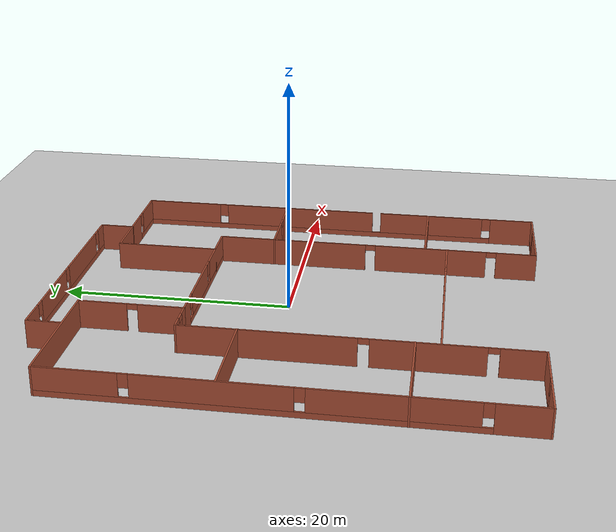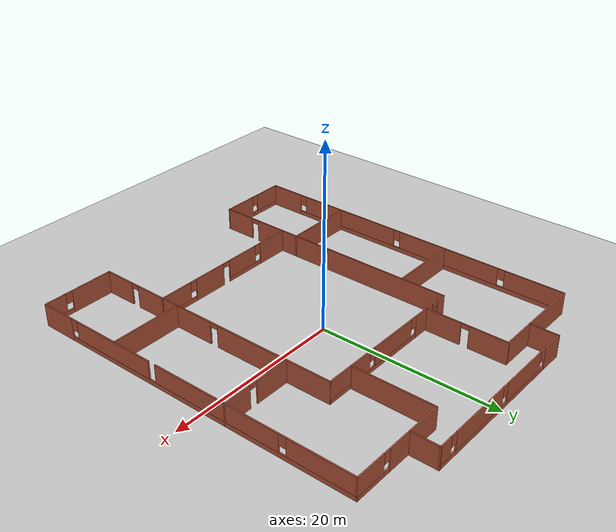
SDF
<sdf version="1.6">
 <world name="default">
  <model name="ground_plane">
   <static>1</static>
   <link name="link">
    <collision name="collision">
     <geometry><plane><normal>0 0 1</normal><size>100 100</size></plane></geometry>
     <surface>
      <contact><collide_bitmask>65535</collide_bitmask></contact>
      <friction><ode><mu>100</mu><mu2>50</mu2></ode></friction>
     </surface>
    </collision>
    <visual name="visual">
     <cast_shadows>0</cast_shadows>
     <geometry><plane><normal>0 0 1</normal><size>100 100</size></plane></geometry>
     <material>
      <script><uri>file://media/materials/scripts/gazebo.material</uri><name>Gazebo/Grey</name></script>
     </material>
    </visual>
   </link>
  </model>
  <model name="structure">
   <pose>-0.2787 -0.7695 0 0 -0 0</pose>
   <link name="Wall_11">
    <collision name="Wall_11_Collision">
     <geometry><box><size>11.15 0.15 2.5</size></box></geometry>
     <pose>0 0 1.25 0 -0 0</pose>
    </collision>
    <visual name="Wall_11_Visual">
     <pose>0 0 1.25 0 -0 0</pose>
     <geometry><box><size>11.15 0.15 2.5</size></box></geometry>
     <material>
      <script><uri>file://media/materials/scripts/gazebo.material</uri><name>Gazebo/Bricks</name></script>
      <ambient>1 1 1 1</ambient>
     </material>
     <meta><layer>0</layer></meta>
    </visual>
    <pose>-11.5 17.5 0 0 -0 0</pose>
   </link>
   <link name="Wall_13">
    <pose>-6 13 0 0 0 -1.5708</pose>
    <visual name="Wall_13_Visual_0">
     <pose>-2.45369 0 1.25 0 -0 0</pose>
     <geometry><box><size>4.24262 0.15 2.5</size></box></geometry>
     <material>
      <script><uri>file://media/materials/scripts/gazebo.material</uri><name>Gazebo/Bricks</name></script>
      <ambient>1 1 1 1</ambient>
     </material>
     <meta><layer>0</layer></meta>
    </visual>
    <collision name="Wall_13_Collision_0">
     <geometry><box><size>4.24262 0.15 2.5</size></box></geometry>
     <pose>-2.45369 0 1.25 0 -0 0</pose>
    </collision>
    <visual name="Wall_13_Visual_1">
     <pose>2.57131 0 1.25 0 -0 0</pose>
     <geometry><box><size>4.00738 0.15 2.5</size></box></geometry>
     <material>
      <script><uri>file://media/materials/scripts/gazebo.material</uri><name>Gazebo/Bricks</name></script>
      <ambient>1 1 1 1</ambient>
     </material>
     <meta><layer>0</layer></meta>
    </visual>
    <collision name="Wall_13_Collision_1">
     <geometry><box><size>4.00738 0.15 2.5</size></box></geometry>
     <pose>2.57131 0 1.25 0 -0 0</pose>
    </collision>
    <visual name="Wall_13_Visual_2">
     <pose>0.117622 0 2.25 0 -0 0</pose>
     <geometry><box><size>0.9 0.15 0.5</size></box></geometry>
     <material>
      <script><uri>file://media/materials/scripts/gazebo.material</uri><name>Gazebo/Bricks</name></script>
      <ambient>1 1 1 1</ambient>
     </material>
     <meta><layer>0</layer></meta>
    </visual>
    <collision name="Wall_13_Collision_2">
     <geometry><box><size>0.9 0.15 0.5</size></box></geometry>
     <pose>0.117622 0 2.25 0 -0 0</pose>
    </collision>
   </link>
   <link name="Wall_15">
    <pose>-7.5 8.5 0 0 -0 3.14159</pose>
    <visual name="Wall_15_Visual_0">
     <pose>-1.03841 0 1.25 0 -0 0</pose>
     <geometry><box><size>1.07318 0.15 2.5</size></box></geometry>
     <material>
      <script><uri>file://media/materials/scripts/gazebo.material</uri><name>Gazebo/Bricks</name></script>
      <ambient>1 1 1 1</ambient>
     </material>
     <meta><layer>0</layer></meta>
    </visual>
    <collision name="Wall_15_Collision_0">
     <geometry><box><size>1.07318 0.15 2.5</size></box></geometry>
     <pose>-1.03841 0 1.25 0 -0 0</pose>
    </collision>
    <visual name="Wall_15_Visual_1">
     <pose>0.98659 0 1.25 0 -0 0</pose>
     <geometry><box><size>1.17682 0.15 2.5</size></box></geometry>
     <material>
      <script><uri>file://media/materials/scripts/gazebo.material</uri><name>Gazebo/Bricks</name></script>
      <ambient>1 1 1 1</ambient>
     </material>
     <meta><layer>0</layer></meta>
    </visual>
    <collision name="Wall_15_Collision_1">
     <geometry><box><size>1.17682 0.15 2.5</size></box></geometry>
     <pose>0.98659 0 1.25 0 -0 0</pose>
    </collision>
    <visual name="Wall_15_Visual_2">
     <pose>-0.051821 0 2.25 0 -0 0</pose>
     <geometry><box><size>0.9 0.15 0.5</size></box></geometry>
     <material>
      <script><uri>file://media/materials/scripts/gazebo.material</uri><name>Gazebo/Bricks</name></script>
      <ambient>1 1 1 1</ambient>
     </material>
     <meta><layer>0</layer></meta>
    </visual>
    <collision name="Wall_15_Collision_2">
     <geometry><box><size>0.9 0.15 0.5</size></box></geometry>
     <pose>-0.051821 0 2.25 0 -0 0</pose>
    </collision>
   </link>
   <link name="Wall_19">
    <pose>-9 -6 0 0 0 -1.5708</pose>
    <visual name="Wall_19_Visual_0">
     <pose>-7.2625 0 1.25 0 -0 0</pose>
     <geometry><box><size>14.625 0.15 2.5</size></box></geometry>
     <material>
      <script><uri>file://media/materials/scripts/gazebo.material</uri><name>Gazebo/Bricks</name></script>
      <ambient>1 1 1 1</ambient>
     </material>
     <meta><layer>0</layer></meta>
    </visual>
    <collision name="Wall_19_Collision_0">
     <geometry><box><size>14.625 0.15 2.5</size></box></geometry>
     <pose>-7.2625 0 1.25 0 -0 0</pose>
    </collision>
    <visual name="Wall_19_Visual_1">
     <pose>5.5 0 1.25 0 -0 0</pose>
     <geometry><box><size>9.1 0.15 2.5</size></box></geometry>
     <material>
      <script><uri>file://media/materials/scripts/gazebo.material</uri><name>Gazebo/Bricks</name></script>
      <ambient>1 1 1 1</ambient>
     </material>
     <meta><layer>0</layer></meta>
    </visual>
    <collision name="Wall_19_Collision_1">
     <geometry><box><size>9.1 0.15 2.5</size></box></geometry>
     <pose>5.5 0 1.25 0 -0 0</pose>
    </collision>
    <visual name="Wall_19_Visual_2">
     <pose>12.7625 0 1.25 0 -0 0</pose>
     <geometry><box><size>3.625 0.15 2.5</size></box></geometry>
     <material>
      <script><uri>file://media/materials/scripts/gazebo.material</uri><name>Gazebo/Bricks</name></script>
      <ambient>1 1 1 1</ambient>
     </material>
     <meta><layer>0</layer></meta>
    </visual>
    <collision name="Wall_19_Collision_2">
     <geometry><box><size>3.625 0.15 2.5</size></box></geometry>
     <pose>12.7625 0 1.25 0 -0 0</pose>
    </collision>
    <visual name="Wall_19_Visual_3">
     <pose>0.5 0 2.25 0 -0 0</pose>
     <geometry><box><size>0.9 0.15 0.5</size></box></geometry>
     <material>
      <script><uri>file://media/materials/scripts/gazebo.material</uri><name>Gazebo/Bricks</name></script>
      <ambient>1 1 1 1</ambient>
     </material>
     <meta><layer>0</layer></meta>
    </visual>
    <collision name="Wall_19_Collision_3">
     <geometry><box><size>0.9 0.15 0.5</size></box></geometry>
     <pose>0.5 0 2.25 0 -0 0</pose>
    </collision>
    <visual name="Wall_19_Visual_4">
     <pose>10.5 0 2.25 0 -0 0</pose>
     <geometry><box><size>0.9 0.15 0.5</size></box></geometry>
     <material>
      <script><uri>file://media/materials/scripts/gazebo.material</uri><name>Gazebo/Bricks</name></script>
      <ambient>1 1 1 1</ambient>
     </material>
     <meta><layer>0</layer></meta>
    </visual>
    <collision name="Wall_19_Collision_4">
     <geometry><box><size>0.9 0.15 0.5</size></box></geometry>
     <pose>10.5 0 2.25 0 -0 0</pose>
    </collision>
   </link>
   <link name="Wall_21">
    <pose>-13 -20.5 0 0 -0 3.14159</pose>
    <visual name="Wall_21_Visual_0">
     <pose>-2.10298 0 1.25 0 -0 0</pose>
     <geometry><box><size>3.94403 0.15 2.5</size></box></geometry>
     <material>
      <script><uri>file://media/materials/scripts/gazebo.material</uri><name>Gazebo/Bricks</name></script>
      <ambient>1 1 1 1</ambient>
     </material>
     <meta><layer>0</layer></meta>
    </visual>
    <collision name="Wall_21_Collision_0">
     <geometry><box><size>3.94403 0.15 2.5</size></box></geometry>
     <pose>-2.10298 0 1.25 0 -0 0</pose>
    </collision>
    <visual name="Wall_21_Visual_1">
     <pose>1.97202 0 0.25 0 -0 0</pose>
     <geometry><box><size>4.20597 0.15 0.5</size></box></geometry>
     <material>
      <script><uri>file://media/materials/scripts/gazebo.material</uri><name>Gazebo/Bricks</name></script>
      <ambient>1 1 1 1</ambient>
     </material>
     <meta><layer>0</layer></meta>
    </visual>
    <collision name="Wall_21_Collision_1">
     <geometry><box><size>4.20597 0.15 0.5</size></box></geometry>
     <pose>1.97202 0 0.25 0 -0 0</pose>
    </collision>
    <visual name="Wall_21_Visual_2">
     <pose>2.37202 0 1.5 0 -0 0</pose>
     <geometry><box><size>3.40597 0.15 2</size></box></geometry>
     <material>
      <script><uri>file://media/materials/scripts/gazebo.material</uri><name>Gazebo/Bricks</name></script>
      <ambient>1 1 1 1</ambient>
     </material>
     <meta><layer>0</layer></meta>
    </visual>
    <collision name="Wall_21_Collision_2">
     <geometry><box><size>3.40597 0.15 2</size></box></geometry>
     <pose>2.37202 0 1.5 0 -0 0</pose>
    </collision>
    <visual name="Wall_21_Visual_3">
     <pose>0.269032 0 1.9 0 -0 0</pose>
     <geometry><box><size>0.8 0.15 1.2</size></box></geometry>
     <material>
      <script><uri>file://media/materials/scripts/gazebo.material</uri><name>Gazebo/Bricks</name></script>
      <ambient>1 1 1 1</ambient>
     </material>
     <meta><layer>0</layer></meta>
    </visual>
    <collision name="Wall_21_Collision_3">
     <geometry><box><size>0.8 0.15 1.2</size></box></geometry>
     <pose>0.269032 0 1.9 0 -0 0</pose>
    </collision>
   </link>
   <link name="Wall_23">
    <collision name="Wall_23_Collision">
     <geometry><box><size>8.15 0.15 2.5</size></box></geometry>
     <pose>0 0 1.25 0 -0 0</pose>
    </collision>
    <visual name="Wall_23_Visual">
     <pose>0 0 1.25 0 -0 0</pose>
     <geometry><box><size>8.15 0.15 2.5</size></box></geometry>
     <material>
      <script><uri>file://media/materials/scripts/gazebo.material</uri><name>Gazebo/Bricks</name></script>
      <ambient>1 1 1 1</ambient>
     </material>
     <meta><layer>0</layer></meta>
    </visual>
    <pose>-13 3.5 0 0 -0 3.14159</pose>
   </link>
   <link name="Wall_25">
    <collision name="Wall_25_Collision">
     <geometry><box><size>8.15 0.15 2.5</size></box></geometry>
     <pose>0 0 1.25 0 -0 0</pose>
    </collision>
    <visual name="Wall_25_Visual">
     <pose>0 0 1.25 0 -0 0</pose>
     <geometry><box><size>8.15 0.15 2.5</size></box></geometry>
     <material>
      <script><uri>file://media/materials/scripts/gazebo.material</uri><name>Gazebo/Bricks</name></script>
      <ambient>0.921569 0.807843 0.615686 1</ambient>
     </material>
     <meta><layer>0</layer></meta>
    </visual>
    <pose>-13 -10.5 0 0 -0 3.14159</pose>
   </link>
   <link name="Wall_27">
    <pose>1e-06 -12.5 0 0 -0 0</pose>
    <visual name="Wall_27_Visual_0">
     <pose>-7.15272 0 1.25 0 -0 0</pose>
     <geometry><box><size>3.84455 0.15 2.5</size></box></geometry>
     <material>
      <script><uri>file://media/materials/scripts/gazebo.material</uri><name>Gazebo/Bricks</name></script>
      <ambient>0.921569 0.807843 0.615686 1</ambient>
     </material>
     <meta><layer>0</layer></meta>
    </visual>
    <collision name="Wall_27_Collision_0">
     <geometry><box><size>3.84455 0.15 2.5</size></box></geometry>
     <pose>-7.15272 0 1.25 0 -0 0</pose>
    </collision>
    <visual name="Wall_27_Visual_1">
     <pose>2.43616 0 1.25 0 -0 0</pose>
     <geometry><box><size>3.97232 0.15 2.5</size></box></geometry>
     <material>
      <script><uri>file://media/materials/scripts/gazebo.material</uri><name>Gazebo/Bricks</name></script>
      <ambient>0.921569 0.807843 0.615686 1</ambient>
     </material>
     <meta><layer>0</layer></meta>
    </visual>
    <collision name="Wall_27_Collision_1">
     <geometry><box><size>3.97232 0.15 2.5</size></box></geometry>
     <pose>2.43616 0 1.25 0 -0 0</pose>
    </collision>
    <visual name="Wall_27_Visual_2">
     <pose>-2.84022 0 0.25 0 -0 0</pose>
     <geometry><box><size>4.78045 0.15 0.5</size></box></geometry>
     <material>
      <script><uri>file://media/materials/scripts/gazebo.material</uri><name>Gazebo/Bricks</name></script>
      <ambient>0.921569 0.807843 0.615686 1</ambient>
     </material>
     <meta><layer>0</layer></meta>
    </visual>
    <collision name="Wall_27_Collision_2">
     <geometry><box><size>4.78045 0.15 0.5</size></box></geometry>
     <pose>-2.84022 0 0.25 0 -0 0</pose>
    </collision>
    <visual name="Wall_27_Visual_3">
     <pose>6.74866 0 0.25 0 -0 0</pose>
     <geometry><box><size>4.65268 0.15 0.5</size></box></geometry>
     <material>
      <script><uri>file://media/materials/scripts/gazebo.material</uri><name>Gazebo/Bricks</name></script>
      <ambient>0.921569 0.807843 0.615686 1</ambient>
     </material>
     <meta><layer>0</layer></meta>
    </visual>
    <collision name="Wall_27_Collision_3">
     <geometry><box><size>4.65268 0.15 0.5</size></box></geometry>
     <pose>6.74866 0 0.25 0 -0 0</pose>
    </collision>
    <visual name="Wall_27_Visual_4">
     <pose>-2.44022 0 1.5 0 -0 0</pose>
     <geometry><box><size>3.98045 0.15 2</size></box></geometry>
     <material>
      <script><uri>file://media/materials/scripts/gazebo.material</uri><name>Gazebo/Bricks</name></script>
      <ambient>0.921569 0.807843 0.615686 1</ambient>
     </material>
     <meta><layer>0</layer></meta>
    </visual>
    <collision name="Wall_27_Collision_4">
     <geometry><box><size>3.98045 0.15 2</size></box></geometry>
     <pose>-2.44022 0 1.5 0 -0 0</pose>
    </collision>
    <visual name="Wall_27_Visual_5">
     <pose>-2.44022 0 1.5 0 -0 0</pose>
     <geometry><box><size>3.98045 0.15 2</size></box></geometry>
     <material>
      <script><uri>file://media/materials/scripts/gazebo.material</uri><name>Gazebo/Bricks</name></script>
      <ambient>0.921569 0.807843 0.615686 1</ambient>
     </material>
     <meta><layer>0</layer></meta>
    </visual>
    <collision name="Wall_27_Collision_5">
     <geometry><box><size>3.98045 0.15 2</size></box></geometry>
     <pose>-2.44022 0 1.5 0 -0 0</pose>
    </collision>
    <visual name="Wall_27_Visual_6">
     <pose>7.14866 0 1.5 0 -0 0</pose>
     <geometry><box><size>3.85268 0.15 2</size></box></geometry>
     <material>
      <script><uri>file://media/materials/scripts/gazebo.material</uri><name>Gazebo/Bricks</name></script>
      <ambient>0.921569 0.807843 0.615686 1</ambient>
     </material>
     <meta><layer>0</layer></meta>
    </visual>
    <collision name="Wall_27_Collision_6">
     <geometry><box><size>3.85268 0.15 2</size></box></geometry>
     <pose>7.14866 0 1.5 0 -0 0</pose>
    </collision>
    <visual name="Wall_27_Visual_7">
     <pose>-4.83045 0 1.9 0 -0 0</pose>
     <geometry><box><size>0.8 0.15 1.2</size></box></geometry>
     <material>
      <script><uri>file://media/materials/scripts/gazebo.material</uri><name>Gazebo/Bricks</name></script>
      <ambient>0.921569 0.807843 0.615686 1</ambient>
     </material>
     <meta><layer>0</layer></meta>
    </visual>
    <collision name="Wall_27_Collision_7">
     <geometry><box><size>0.8 0.15 1.2</size></box></geometry>
     <pose>-4.83045 0 1.9 0 -0 0</pose>
    </collision>
    <visual name="Wall_27_Visual_8">
     <pose>4.82232 0 1.9 0 -0 0</pose>
     <geometry><box><size>0.8 0.15 1.2</size></box></geometry>
     <material>
      <script><uri>file://media/materials/scripts/gazebo.material</uri><name>Gazebo/Bricks</name></script>
      <ambient>0.921569 0.807843 0.615686 1</ambient>
     </material>
     <meta><layer>0</layer></meta>
    </visual>
    <collision name="Wall_27_Collision_8">
     <geometry><box><size>0.8 0.15 1.2</size></box></geometry>
     <pose>4.82232 0 1.9 0 -0 0</pose>
    </collision>
    <visual name="Wall_27_Visual_9">
     <pose>0 0 2.25 0 -0 0</pose>
     <geometry><box><size>0.9 0.15 0.5</size></box></geometry>
     <material>
      <script><uri>file://media/materials/scripts/gazebo.material</uri><name>Gazebo/Bricks</name></script>
      <ambient>0.921569 0.807843 0.615686 1</ambient>
     </material>
     <meta><layer>0</layer></meta>
    </visual>
    <collision name="Wall_27_Collision_9">
     <geometry><box><size>0.9 0.15 0.5</size></box></geometry>
     <pose>0 0 2.25 0 -0 0</pose>
    </collision>
    <visual name="Wall_27_Visual_10">
     <pose>0 0 2.25 0 -0 0</pose>
     <geometry><box><size>0.9 0.15 0.5</size></box></geometry>
     <material>
      <script><uri>file://media/materials/scripts/gazebo.material</uri><name>Gazebo/Bricks</name></script>
      <ambient>0.921569 0.807843 0.615686 1</ambient>
     </material>
     <meta><layer>0</layer></meta>
    </visual>
    <collision name="Wall_27_Collision_10">
     <geometry><box><size>0.9 0.15 0.5</size></box></geometry>
     <pose>0 0 2.25 0 -0 0</pose>
    </collision>
   </link>
   <link name="Wall_29">
    <pose>1.5 8.5 0 0 -0 0</pose>
    <visual name="Wall_29_Visual_0">
     <pose>-6.61866 0 1.25 0 -0 0</pose>
     <geometry><box><size>1.91268 0.15 2.5</size></box></geometry>
     <material>
      <script><uri>file://media/materials/scripts/gazebo.material</uri><name>Gazebo/Bricks</name></script>
      <ambient>1 1 1 1</ambient>
     </material>
     <meta><layer>0</layer></meta>
    </visual>
    <collision name="Wall_29_Collision_0">
     <geometry><box><size>1.91268 0.15 2.5</size></box></geometry>
     <pose>-6.61866 0 1.25 0 -0 0</pose>
    </collision>
    <visual name="Wall_29_Visual_1">
     <pose>0.956339 0 0.25 0 -0 0</pose>
     <geometry><box><size>13.2373 0.15 0.5</size></box></geometry>
     <material>
      <script><uri>file://media/materials/scripts/gazebo.material</uri><name>Gazebo/Bricks</name></script>
      <ambient>1 1 1 1</ambient>
     </material>
     <meta><layer>0</layer></meta>
    </visual>
    <collision name="Wall_29_Collision_1">
     <geometry><box><size>13.2373 0.15 0.5</size></box></geometry>
     <pose>0.956339 0 0.25 0 -0 0</pose>
    </collision>
    <visual name="Wall_29_Visual_2">
     <pose>-1.96235 0 1.5 0 -0 0</pose>
     <geometry><box><size>5.79994 0.15 2</size></box></geometry>
     <material>
      <script><uri>file://media/materials/scripts/gazebo.material</uri><name>Gazebo/Bricks</name></script>
      <ambient>1 1 1 1</ambient>
     </material>
     <meta><layer>0</layer></meta>
    </visual>
    <collision name="Wall_29_Collision_2">
     <geometry><box><size>5.79994 0.15 2</size></box></geometry>
     <pose>-1.96235 0 1.5 0 -0 0</pose>
    </collision>
    <visual name="Wall_29_Visual_3">
     <pose>4.65631 0 1.5 0 -0 0</pose>
     <geometry><box><size>5.83739 0.15 2</size></box></geometry>
     <material>
      <script><uri>file://media/materials/scripts/gazebo.material</uri><name>Gazebo/Bricks</name></script>
      <ambient>1 1 1 1</ambient>
     </material>
     <meta><layer>0</layer></meta>
    </visual>
    <collision name="Wall_29_Collision_3">
     <geometry><box><size>5.83739 0.15 2</size></box></geometry>
     <pose>4.65631 0 1.5 0 -0 0</pose>
    </collision>
    <visual name="Wall_29_Visual_4">
     <pose>-5.26232 0 1.9 0 -0 0</pose>
     <geometry><box><size>0.8 0.15 1.2</size></box></geometry>
     <material>
      <script><uri>file://media/materials/scripts/gazebo.material</uri><name>Gazebo/Bricks</name></script>
      <ambient>1 1 1 1</ambient>
     </material>
     <meta><layer>0</layer></meta>
    </visual>
    <collision name="Wall_29_Collision_4">
     <geometry><box><size>0.8 0.15 1.2</size></box></geometry>
     <pose>-5.26232 0 1.9 0 -0 0</pose>
    </collision>
    <visual name="Wall_29_Visual_5">
     <pose>1.33761 0 1.9 0 -0 0</pose>
     <geometry><box><size>0.8 0.15 1.2</size></box></geometry>
     <material>
      <script><uri>file://media/materials/scripts/gazebo.material</uri><name>Gazebo/Bricks</name></script>
      <ambient>1 1 1 1</ambient>
     </material>
     <meta><layer>0</layer></meta>
    </visual>
    <collision name="Wall_29_Collision_5">
     <geometry><box><size>0.8 0.15 1.2</size></box></geometry>
     <pose>1.33761 0 1.9 0 -0 0</pose>
    </collision>
   </link>
   <link name="Wall_31">
    <pose>9 -6 0 0 0 -1.5708</pose>
    <visual name="Wall_31_Visual_0">
     <pose>-7.7625 0 1.25 0 -0 0</pose>
     <geometry><box><size>13.625 0.15 2.5</size></box></geometry>
     <material>
      <script><uri>file://media/materials/scripts/gazebo.material</uri><name>Gazebo/Bricks</name></script>
      <ambient>1 1 1 1</ambient>
     </material>
     <meta><layer>0</layer></meta>
    </visual>
    <collision name="Wall_31_Collision_0">
     <geometry><box><size>13.625 0.15 2.5</size></box></geometry>
     <pose>-7.7625 0 1.25 0 -0 0</pose>
    </collision>
    <visual name="Wall_31_Visual_1">
     <pose>5 0 1.25 0 -0 0</pose>
     <geometry><box><size>10.1 0.15 2.5</size></box></geometry>
     <material>
      <script><uri>file://media/materials/scripts/gazebo.material</uri><name>Gazebo/Bricks</name></script>
      <ambient>1 1 1 1</ambient>
     </material>
     <meta><layer>0</layer></meta>
    </visual>
    <collision name="Wall_31_Collision_1">
     <geometry><box><size>10.1 0.15 2.5</size></box></geometry>
     <pose>5 0 1.25 0 -0 0</pose>
    </collision>
    <visual name="Wall_31_Visual_2">
     <pose>12.7625 0 1.25 0 -0 0</pose>
     <geometry><box><size>3.625 0.15 2.5</size></box></geometry>
     <material>
      <script><uri>file://media/materials/scripts/gazebo.material</uri><name>Gazebo/Bricks</name></script>
      <ambient>1 1 1 1</ambient>
     </material>
     <meta><layer>0</layer></meta>
    </visual>
    <collision name="Wall_31_Collision_2">
     <geometry><box><size>3.625 0.15 2.5</size></box></geometry>
     <pose>12.7625 0 1.25 0 -0 0</pose>
    </collision>
    <visual name="Wall_31_Visual_3">
     <pose>-0.5 0 2.25 0 -0 0</pose>
     <geometry><box><size>0.9 0.15 0.5</size></box></geometry>
     <material>
      <script><uri>file://media/materials/scripts/gazebo.material</uri><name>Gazebo/Bricks</name></script>
      <ambient>1 1 1 1</ambient>
     </material>
     <meta><layer>0</layer></meta>
    </visual>
    <collision name="Wall_31_Collision_3">
     <geometry><box><size>0.9 0.15 0.5</size></box></geometry>
     <pose>-0.5 0 2.25 0 -0 0</pose>
    </collision>
    <visual name="Wall_31_Visual_4">
     <pose>10.5 0 2.25 0 -0 0</pose>
     <geometry><box><size>0.9 0.15 0.5</size></box></geometry>
     <material>
      <script><uri>file://media/materials/scripts/gazebo.material</uri><name>Gazebo/Bricks</name></script>
      <ambient>1 1 1 1</ambient>
     </material>
     <meta><layer>0</layer></meta>
    </visual>
    <collision name="Wall_31_Collision_4">
     <geometry><box><size>0.9 0.15 0.5</size></box></geometry>
     <pose>10.5 0 2.25 0 -0 0</pose>
    </collision>
   </link>
   <link name="Wall_33">
    <pose>13 -20.5 0 0 -0 0</pose>
    <visual name="Wall_33_Visual_0">
     <pose>-1.62137 0 1.25 0 -0 0</pose>
     <geometry><box><size>4.90725 0.15 2.5</size></box></geometry>
     <material>
      <script><uri>file://media/materials/scripts/gazebo.material</uri><name>Gazebo/Bricks</name></script>
      <ambient>1 1 1 1</ambient>
     </material>
     <meta><layer>0</layer></meta>
    </visual>
    <collision name="Wall_33_Collision_0">
     <geometry><box><size>4.90725 0.15 2.5</size></box></geometry>
     <pose>-1.62137 0 1.25 0 -0 0</pose>
    </collision>
    <visual name="Wall_33_Visual_1">
     <pose>2.45363 0 0.25 0 -0 0</pose>
     <geometry><box><size>3.24275 0.15 0.5</size></box></geometry>
     <material>
      <script><uri>file://media/materials/scripts/gazebo.material</uri><name>Gazebo/Bricks</name></script>
      <ambient>1 1 1 1</ambient>
     </material>
     <meta><layer>0</layer></meta>
    </visual>
    <collision name="Wall_33_Collision_1">
     <geometry><box><size>3.24275 0.15 0.5</size></box></geometry>
     <pose>2.45363 0 0.25 0 -0 0</pose>
    </collision>
    <visual name="Wall_33_Visual_2">
     <pose>2.85363 0 1.5 0 -0 0</pose>
     <geometry><box><size>2.44275 0.15 2</size></box></geometry>
     <material>
      <script><uri>file://media/materials/scripts/gazebo.material</uri><name>Gazebo/Bricks</name></script>
      <ambient>1 1 1 1</ambient>
     </material>
     <meta><layer>0</layer></meta>
    </visual>
    <collision name="Wall_33_Collision_2">
     <geometry><box><size>2.44275 0.15 2</size></box></geometry>
     <pose>2.85363 0 1.5 0 -0 0</pose>
    </collision>
    <visual name="Wall_33_Visual_3">
     <pose>1.23225 0 1.9 0 -0 0</pose>
     <geometry><box><size>0.8 0.15 1.2</size></box></geometry>
     <material>
      <script><uri>file://media/materials/scripts/gazebo.material</uri><name>Gazebo/Bricks</name></script>
      <ambient>1 1 1 1</ambient>
     </material>
     <meta><layer>0</layer></meta>
    </visual>
    <collision name="Wall_33_Collision_3">
     <geometry><box><size>0.8 0.15 1.2</size></box></geometry>
     <pose>1.23225 0 1.9 0 -0 0</pose>
    </collision>
   </link>
   <link name="Wall_35">
    <pose>13 3.5 0 0 -0 0</pose>
    <visual name="Wall_35_Visual_0">
     <pose>-2.04491 0 1.25 0 -0 0</pose>
     <geometry><box><size>4.06018 0.15 2.5</size></box></geometry>
     <material>
      <script><uri>file://media/materials/scripts/gazebo.material</uri><name>Gazebo/Bricks</name></script>
      <ambient>1 1 1 1</ambient>
     </material>
     <meta><layer>0</layer></meta>
    </visual>
    <collision name="Wall_35_Collision_0">
     <geometry><box><size>4.06018 0.15 2.5</size></box></geometry>
     <pose>-2.04491 0 1.25 0 -0 0</pose>
    </collision>
    <visual name="Wall_35_Visual_1">
     <pose>2.48009 0 1.25 0 -0 0</pose>
     <geometry><box><size>3.18982 0.15 2.5</size></box></geometry>
     <material>
      <script><uri>file://media/materials/scripts/gazebo.material</uri><name>Gazebo/Bricks</name></script>
      <ambient>1 1 1 1</ambient>
     </material>
     <meta><layer>0</layer></meta>
    </visual>
    <collision name="Wall_35_Collision_1">
     <geometry><box><size>3.18982 0.15 2.5</size></box></geometry>
     <pose>2.48009 0 1.25 0 -0 0</pose>
    </collision>
    <visual name="Wall_35_Visual_2">
     <pose>0.435177 0 2.25 0 -0 0</pose>
     <geometry><box><size>0.9 0.15 0.5</size></box></geometry>
     <material>
      <script><uri>file://media/materials/scripts/gazebo.material</uri><name>Gazebo/Bricks</name></script>
      <ambient>1 1 1 1</ambient>
     </material>
     <meta><layer>0</layer></meta>
    </visual>
    <collision name="Wall_35_Collision_2">
     <geometry><box><size>0.9 0.15 0.5</size></box></geometry>
     <pose>0.435177 0 2.25 0 -0 0</pose>
    </collision>
   </link>
   <link name="Wall_37">
    <collision name="Wall_37_Collision">
     <geometry><box><size>8.15 0.15 2.5</size></box></geometry>
     <pose>0 0 1.25 0 -0 0</pose>
    </collision>
    <visual name="Wall_37_Visual">
     <pose>0 0 1.25 0 -0 0</pose>
     <geometry><box><size>8.15 0.15 2.5</size></box></geometry>
     <material>
      <script><uri>file://media/materials/scripts/gazebo.material</uri><name>Gazebo/Bricks</name></script>
      <ambient>1 1 1 1</ambient>
     </material>
     <meta><layer>0</layer></meta>
    </visual>
    <pose>13 -10.5 0 0 -0 0</pose>
   </link>
   <link name="Wall_39">
    <pose>17 -1.5 0 0 -0 1.5708</pose>
    <visual name="Wall_39_Visual_0">
     <pose>-17.0517 0 1.25 0 -0 0</pose>
     <geometry><box><size>4.04653 0.15 2.5</size></box></geometry>
     <material>
      <script><uri>file://media/materials/scripts/gazebo.material</uri><name>Gazebo/Bricks</name></script>
      <ambient>1 1 1 1</ambient>
     </material>
     <meta><layer>0</layer></meta>
    </visual>
    <collision name="Wall_39_Collision_0">
     <geometry><box><size>4.04653 0.15 2.5</size></box></geometry>
     <pose>-17.0517 0 1.25 0 -0 0</pose>
    </collision>
    <visual name="Wall_39_Visual_1">
     <pose>2.02327 0 0.25 0 -0 0</pose>
     <geometry><box><size>34.1035 0.15 0.5</size></box></geometry>
     <material>
      <script><uri>file://media/materials/scripts/gazebo.material</uri><name>Gazebo/Bricks</name></script>
      <ambient>1 1 1 1</ambient>
     </material>
     <meta><layer>0</layer></meta>
    </visual>
    <collision name="Wall_39_Collision_1">
     <geometry><box><size>34.1035 0.15 0.5</size></box></geometry>
     <pose>2.02327 0 0.25 0 -0 0</pose>
    </collision>
    <visual name="Wall_39_Visual_2">
     <pose>-9.28932 0 1.5 0 -0 0</pose>
     <geometry><box><size>9.8783 0.15 2</size></box></geometry>
     <material>
      <script><uri>file://media/materials/scripts/gazebo.material</uri><name>Gazebo/Bricks</name></script>
      <ambient>1 1 1 1</ambient>
     </material>
     <meta><layer>0</layer></meta>
    </visual>
    <collision name="Wall_39_Collision_2">
     <geometry><box><size>9.8783 0.15 2</size></box></geometry>
     <pose>-9.28932 0 1.5 0 -0 0</pose>
    </collision>
    <visual name="Wall_39_Visual_3">
     <pose>3.74165 0 1.5 0 -0 0</pose>
     <geometry><box><size>14.5836 0.15 2</size></box></geometry>
     <material>
      <script><uri>file://media/materials/scripts/gazebo.material</uri><name>Gazebo/Bricks</name></script>
      <ambient>1 1 1 1</ambient>
     </material>
     <meta><layer>0</layer></meta>
    </visual>
    <collision name="Wall_39_Collision_3">
     <geometry><box><size>14.5836 0.15 2</size></box></geometry>
     <pose>3.74165 0 1.5 0 -0 0</pose>
    </collision>
    <visual name="Wall_39_Visual_4">
     <pose>15.4542 0 1.5 0 -0 0</pose>
     <geometry><box><size>7.24153 0.15 2</size></box></geometry>
     <material>
      <script><uri>file://media/materials/scripts/gazebo.material</uri><name>Gazebo/Bricks</name></script>
      <ambient>1 1 1 1</ambient>
     </material>
     <meta><layer>0</layer></meta>
    </visual>
    <collision name="Wall_39_Collision_4">
     <geometry><box><size>7.24153 0.15 2</size></box></geometry>
     <pose>15.4542 0 1.5 0 -0 0</pose>
    </collision>
    <visual name="Wall_39_Visual_5">
     <pose>-14.6285 0 1.9 0 -0 0</pose>
     <geometry><box><size>0.8 0.15 1.2</size></box></geometry>
     <material>
      <script><uri>file://media/materials/scripts/gazebo.material</uri><name>Gazebo/Bricks</name></script>
      <ambient>1 1 1 1</ambient>
     </material>
     <meta><layer>0</layer></meta>
    </visual>
    <collision name="Wall_39_Collision_5">
     <geometry><box><size>0.8 0.15 1.2</size></box></geometry>
     <pose>-14.6285 0 1.9 0 -0 0</pose>
    </collision>
    <visual name="Wall_39_Visual_6">
     <pose>-4.35017 0 1.9 0 -0 0</pose>
     <geometry><box><size>0.0001 0.15 1.2</size></box></geometry>
     <material>
      <script><uri>file://media/materials/scripts/gazebo.material</uri><name>Gazebo/Bricks</name></script>
      <ambient>1 1 1 1</ambient>
     </material>
     <meta><layer>0</layer></meta>
    </visual>
    <collision name="Wall_39_Collision_6">
     <geometry><box><size>0.0001 0.15 1.2</size></box></geometry>
     <pose>-4.35017 0 1.9 0 -0 0</pose>
    </collision>
    <visual name="Wall_39_Visual_7">
     <pose>11.4335 0 1.9 0 -0 0</pose>
     <geometry><box><size>0.8 0.15 1.2</size></box></geometry>
     <material>
      <script><uri>file://media/materials/scripts/gazebo.material</uri><name>Gazebo/Bricks</name></script>
      <ambient>1 1 1 1</ambient>
     </material>
     <meta><layer>0</layer></meta>
    </visual>
    <collision name="Wall_39_Collision_7">
     <geometry><box><size>0.8 0.15 1.2</size></box></geometry>
     <pose>11.4335 0 1.9 0 -0 0</pose>
    </collision>
   </link>
   <link name="Wall_41">
    <collision name="Wall_41_Collision">
     <geometry><box><size>9.15 0.15 2.5</size></box></geometry>
     <pose>0 0 1.25 0 -0 0</pose>
    </collision>
    <visual name="Wall_41_Visual">
     <pose>0 0 1.25 0 -0 0</pose>
     <geometry><box><size>9.15 0.15 2.5</size></box></geometry>
     <material>
      <script><uri>file://media/materials/scripts/gazebo.material</uri><name>Gazebo/Bricks</name></script>
      <ambient>1 1 1 1</ambient>
     </material>
     <meta><layer>0</layer></meta>
    </visual>
    <pose>6 13 0 0 -0 1.5708</pose>
   </link>
   <link name="Wall_43">
    <pose>11.5 17.5 0 0 -0 0</pose>
    <visual name="Wall_43_Visual_0">
     <pose>-2.17048 0 1.25 0 -0 0</pose>
     <geometry><box><size>6.80905 0.15 2.5</size></box></geometry>
     <material>
      <script><uri>file://media/materials/scripts/gazebo.material</uri><name>Gazebo/Bricks</name></script>
      <ambient>1 1 1 1</ambient>
     </material>
     <meta><layer>0</layer></meta>
    </visual>
    <collision name="Wall_43_Collision_0">
     <geometry><box><size>6.80905 0.15 2.5</size></box></geometry>
     <pose>-2.17048 0 1.25 0 -0 0</pose>
    </collision>
    <visual name="Wall_43_Visual_1">
     <pose>3.40452 0 0.25 0 -0 0</pose>
     <geometry><box><size>4.34095 0.15 0.5</size></box></geometry>
     <material>
      <script><uri>file://media/materials/scripts/gazebo.material</uri><name>Gazebo/Bricks</name></script>
      <ambient>1 1 1 1</ambient>
     </material>
     <meta><layer>0</layer></meta>
    </visual>
    <collision name="Wall_43_Collision_1">
     <geometry><box><size>4.34095 0.15 0.5</size></box></geometry>
     <pose>3.40452 0 0.25 0 -0 0</pose>
    </collision>
    <visual name="Wall_43_Visual_2">
     <pose>3.80452 0 1.5 0 -0 0</pose>
     <geometry><box><size>3.54095 0.15 2</size></box></geometry>
     <material>
      <script><uri>file://media/materials/scripts/gazebo.material</uri><name>Gazebo/Bricks</name></script>
      <ambient>1 1 1 1</ambient>
     </material>
     <meta><layer>0</layer></meta>
    </visual>
    <collision name="Wall_43_Collision_2">
     <geometry><box><size>3.54095 0.15 2</size></box></geometry>
     <pose>3.80452 0 1.5 0 -0 0</pose>
    </collision>
    <visual name="Wall_43_Visual_3">
     <pose>1.63405 0 1.9 0 -0 0</pose>
     <geometry><box><size>0.8 0.15 1.2</size></box></geometry>
     <material>
      <script><uri>file://media/materials/scripts/gazebo.material</uri><name>Gazebo/Bricks</name></script>
      <ambient>1 1 1 1</ambient>
     </material>
     <meta><layer>0</layer></meta>
    </visual>
    <collision name="Wall_43_Collision_3">
     <geometry><box><size>0.8 0.15 1.2</size></box></geometry>
     <pose>1.63405 0 1.9 0 -0 0</pose>
    </collision>
   </link>
   <link name="Wall_45">
    <collision name="Wall_45_Collision">
     <geometry><box><size>3.15 0.15 2.5</size></box></geometry>
     <pose>0 0 1.25 0 -0 0</pose>
    </collision>
    <visual name="Wall_45_Visual">
     <pose>0 0 1.25 0 -0 0</pose>
     <geometry><box><size>3.15 0.15 2.5</size></box></geometry>
     <material>
      <script><uri>file://media/materials/scripts/gazebo.material</uri><name>Gazebo/Bricks</name></script>
      <ambient>1 1 1 1</ambient>
     </material>
     <meta><layer>0</layer></meta>
    </visual>
    <pose>-10 19 0 0 -0 1.5708</pose>
   </link>
   <link name="Wall_47">
    <collision name="Wall_47_Collision">
     <geometry><box><size>3.15 0.15 2.5</size></box></geometry>
     <pose>0 0 1.25 0 -0 0</pose>
    </collision>
    <visual name="Wall_47_Visual">
     <pose>0 0 1.25 0 -0 0</pose>
     <geometry><box><size>3.15 0.15 2.5</size></box></geometry>
     <material>
      <script><uri>file://media/materials/scripts/gazebo.material</uri><name>Gazebo/Bricks</name></script>
      <ambient>1 1 1 1</ambient>
     </material>
     <meta><layer>0</layer></meta>
    </visual>
    <pose>10 19 0 0 -0 1.5708</pose>
   </link>
   <link name="Wall_49">
    <pose>1e-06 20.5 0 0 -0 0</pose>
    <visual name="Wall_49_Visual_0">
     <pose>-8.7108 0 1.25 0 -0 0</pose>
     <geometry><box><size>2.72839 0.15 2.5</size></box></geometry>
     <material>
      <script><uri>file://media/materials/scripts/gazebo.material</uri><name>Gazebo/Bricks</name></script>
      <ambient>1 1 1 1</ambient>
     </material>
     <meta><layer>0</layer></meta>
    </visual>
    <collision name="Wall_49_Collision_0">
     <geometry><box><size>2.72839 0.15 2.5</size></box></geometry>
     <pose>-8.7108 0 1.25 0 -0 0</pose>
    </collision>
    <visual name="Wall_49_Visual_1">
     <pose>1.3642 0 0.25 0 -0 0</pose>
     <geometry><box><size>17.4216 0.15 0.5</size></box></geometry>
     <material>
      <script><uri>file://media/materials/scripts/gazebo.material</uri><name>Gazebo/Bricks</name></script>
      <ambient>1 1 1 1</ambient>
     </material>
     <meta><layer>0</layer></meta>
    </visual>
    <collision name="Wall_49_Collision_1">
     <geometry><box><size>17.4216 0.15 0.5</size></box></geometry>
     <pose>1.3642 0 0.25 0 -0 0</pose>
    </collision>
    <visual name="Wall_49_Visual_2">
     <pose>-3.57643 0 1.5 0 -0 0</pose>
     <geometry><box><size>5.94036 0.15 2</size></box></geometry>
     <material>
      <script><uri>file://media/materials/scripts/gazebo.material</uri><name>Gazebo/Bricks</name></script>
      <ambient>1 1 1 1</ambient>
     </material>
     <meta><layer>0</layer></meta>
    </visual>
    <collision name="Wall_49_Collision_2">
     <geometry><box><size>5.94036 0.15 2</size></box></geometry>
     <pose>-3.57643 0 1.5 0 -0 0</pose>
    </collision>
    <visual name="Wall_49_Visual_3">
     <pose>3.93627 0 1.5 0 -0 0</pose>
     <geometry><box><size>7.48503 0.15 2</size></box></geometry>
     <material>
      <script><uri>file://media/materials/scripts/gazebo.material</uri><name>Gazebo/Bricks</name></script>
      <ambient>1 1 1 1</ambient>
     </material>
     <meta><layer>0</layer></meta>
    </visual>
    <collision name="Wall_49_Collision_3">
     <geometry><box><size>7.48503 0.15 2</size></box></geometry>
     <pose>3.93627 0 1.5 0 -0 0</pose>
    </collision>
    <visual name="Wall_49_Visual_4">
     <pose>9.27689 0 1.5 0 -0 0</pose>
     <geometry><box><size>1.59622 0.15 2</size></box></geometry>
     <material>
      <script><uri>file://media/materials/scripts/gazebo.material</uri><name>Gazebo/Bricks</name></script>
      <ambient>1 1 1 1</ambient>
     </material>
     <meta><layer>0</layer></meta>
    </visual>
    <collision name="Wall_49_Collision_4">
     <geometry><box><size>1.59622 0.15 2</size></box></geometry>
     <pose>9.27689 0 1.5 0 -0 0</pose>
    </collision>
    <visual name="Wall_49_Visual_5">
     <pose>-6.94661 0 1.9 0 -0 0</pose>
     <geometry><box><size>0.8 0.15 1.2</size></box></geometry>
     <material>
      <script><uri>file://media/materials/scripts/gazebo.material</uri><name>Gazebo/Bricks</name></script>
      <ambient>1 1 1 1</ambient>
     </material>
     <meta><layer>0</layer></meta>
    </visual>
    <collision name="Wall_49_Collision_5">
     <geometry><box><size>0.8 0.15 1.2</size></box></geometry>
     <pose>-6.94661 0 1.9 0 -0 0</pose>
    </collision>
    <visual name="Wall_49_Visual_6">
     <pose>-0.206247 0 1.9 0 -0 0</pose>
     <geometry><box><size>0.8 0.15 1.2</size></box></geometry>
     <material>
      <script><uri>file://media/materials/scripts/gazebo.material</uri><name>Gazebo/Bricks</name></script>
      <ambient>1 1 1 1</ambient>
     </material>
     <meta><layer>0</layer></meta>
    </visual>
    <collision name="Wall_49_Collision_6">
     <geometry><box><size>0.8 0.15 1.2</size></box></geometry>
     <pose>-0.206247 0 1.9 0 -0 0</pose>
    </collision>
    <visual name="Wall_49_Visual_7">
     <pose>8.07878 0 1.9 0 -0 0</pose>
     <geometry><box><size>0.8 0.15 1.2</size></box></geometry>
     <material>
      <script><uri>file://media/materials/scripts/gazebo.material</uri><name>Gazebo/Bricks</name></script>
      <ambient>1 1 1 1</ambient>
     </material>
     <meta><layer>0</layer></meta>
    </visual>
    <collision name="Wall_49_Collision_7">
     <geometry><box><size>0.8 0.15 1.2</size></box></geometry>
     <pose>8.07878 0 1.9 0 -0 0</pose>
    </collision>
   </link>
   <link name="Wall_7">
    <pose>-17 -1.575 0 0 -0 1.5708</pose>
    <visual name="Wall_7_Visual_0">
     <pose>-16.9349 0 1.25 0 -0 0</pose>
     <geometry><box><size>4.13014 0.15 2.5</size></box></geometry>
     <material>
      <script><uri>file://media/materials/scripts/gazebo.material</uri><name>Gazebo/Bricks</name></script>
      <ambient>0.921569 0.807843 0.615686 1</ambient>
     </material>
     <meta><layer>0</layer></meta>
    </visual>
    <collision name="Wall_7_Collision_0">
     <geometry><box><size>4.13014 0.15 2.5</size></box></geometry>
     <pose>-16.9349 0 1.25 0 -0 0</pose>
    </collision>
    <visual name="Wall_7_Visual_1">
     <pose>2.06507 0 0.25 0 -0 0</pose>
     <geometry><box><size>33.8699 0.15 0.5</size></box></geometry>
     <material>
      <script><uri>file://media/materials/scripts/gazebo.material</uri><name>Gazebo/Bricks</name></script>
      <ambient>0.921569 0.807843 0.615686 1</ambient>
     </material>
     <meta><layer>0</layer></meta>
    </visual>
    <collision name="Wall_7_Collision_1">
     <geometry><box><size>33.8699 0.15 0.5</size></box></geometry>
     <pose>2.06507 0 0.25 0 -0 0</pose>
    </collision>
    <visual name="Wall_7_Visual_2">
     <pose>-7.77699 0 1.5 0 -0 0</pose>
     <geometry><box><size>12.5858 0.15 2</size></box></geometry>
     <material>
      <script><uri>file://media/materials/scripts/gazebo.material</uri><name>Gazebo/Bricks</name></script>
      <ambient>0.921569 0.807843 0.615686 1</ambient>
     </material>
     <meta><layer>0</layer></meta>
    </visual>
    <collision name="Wall_7_Collision_2">
     <geometry><box><size>12.5858 0.15 2</size></box></geometry>
     <pose>-7.77699 0 1.5 0 -0 0</pose>
    </collision>
    <visual name="Wall_7_Visual_3">
     <pose>5.45924 0 1.5 0 -0 0</pose>
     <geometry><box><size>12.2867 0.15 2</size></box></geometry>
     <material>
      <script><uri>file://media/materials/scripts/gazebo.material</uri><name>Gazebo/Bricks</name></script>
      <ambient>0.921569 0.807843 0.615686 1</ambient>
     </material>
     <meta><layer>0</layer></meta>
    </visual>
    <collision name="Wall_7_Collision_3">
     <geometry><box><size>12.2867 0.15 2</size></box></geometry>
     <pose>5.45924 0 1.5 0 -0 0</pose>
    </collision>
    <visual name="Wall_7_Visual_4">
     <pose>15.7013 0 1.5 0 -0 0</pose>
     <geometry><box><size>6.59741 0.15 2</size></box></geometry>
     <material>
      <script><uri>file://media/materials/scripts/gazebo.material</uri><name>Gazebo/Bricks</name></script>
      <ambient>0.921569 0.807843 0.615686 1</ambient>
     </material>
     <meta><layer>0</layer></meta>
    </visual>
    <collision name="Wall_7_Collision_4">
     <geometry><box><size>6.59741 0.15 2</size></box></geometry>
     <pose>15.7013 0 1.5 0 -0 0</pose>
    </collision>
    <visual name="Wall_7_Visual_5">
     <pose>-14.4699 0 1.9 0 -0 0</pose>
     <geometry><box><size>0.8 0.15 1.2</size></box></geometry>
     <material>
      <script><uri>file://media/materials/scripts/gazebo.material</uri><name>Gazebo/Bricks</name></script>
      <ambient>0.921569 0.807843 0.615686 1</ambient>
     </material>
     <meta><layer>0</layer></meta>
    </visual>
    <collision name="Wall_7_Collision_5">
     <geometry><box><size>0.8 0.15 1.2</size></box></geometry>
     <pose>-14.4699 0 1.9 0 -0 0</pose>
    </collision>
    <visual name="Wall_7_Visual_6">
     <pose>-1.08411 0 1.9 0 -0 0</pose>
     <geometry><box><size>0.8 0.15 1.2</size></box></geometry>
     <material>
      <script><uri>file://media/materials/scripts/gazebo.material</uri><name>Gazebo/Bricks</name></script>
      <ambient>0.921569 0.807843 0.615686 1</ambient>
     </material>
     <meta><layer>0</layer></meta>
    </visual>
    <collision name="Wall_7_Collision_6">
     <geometry><box><size>0.8 0.15 1.2</size></box></geometry>
     <pose>-1.08411 0 1.9 0 -0 0</pose>
    </collision>
    <visual name="Wall_7_Visual_7">
     <pose>12.0026 0 1.9 0 -0 0</pose>
     <geometry><box><size>0.8 0.15 1.2</size></box></geometry>
     <material>
      <script><uri>file://media/materials/scripts/gazebo.material</uri><name>Gazebo/Bricks</name></script>
      <ambient>0.921569 0.807843 0.615686 1</ambient>
     </material>
     <meta><layer>0</layer></meta>
    </visual>
    <collision name="Wall_7_Collision_7">
     <geometry><box><size>0.8 0.15 1.2</size></box></geometry>
     <pose>12.0026 0 1.9 0 -0 0</pose>
    </collision>
   </link>
   <static>1</static>
  </model>
 </world>
</sdf>
